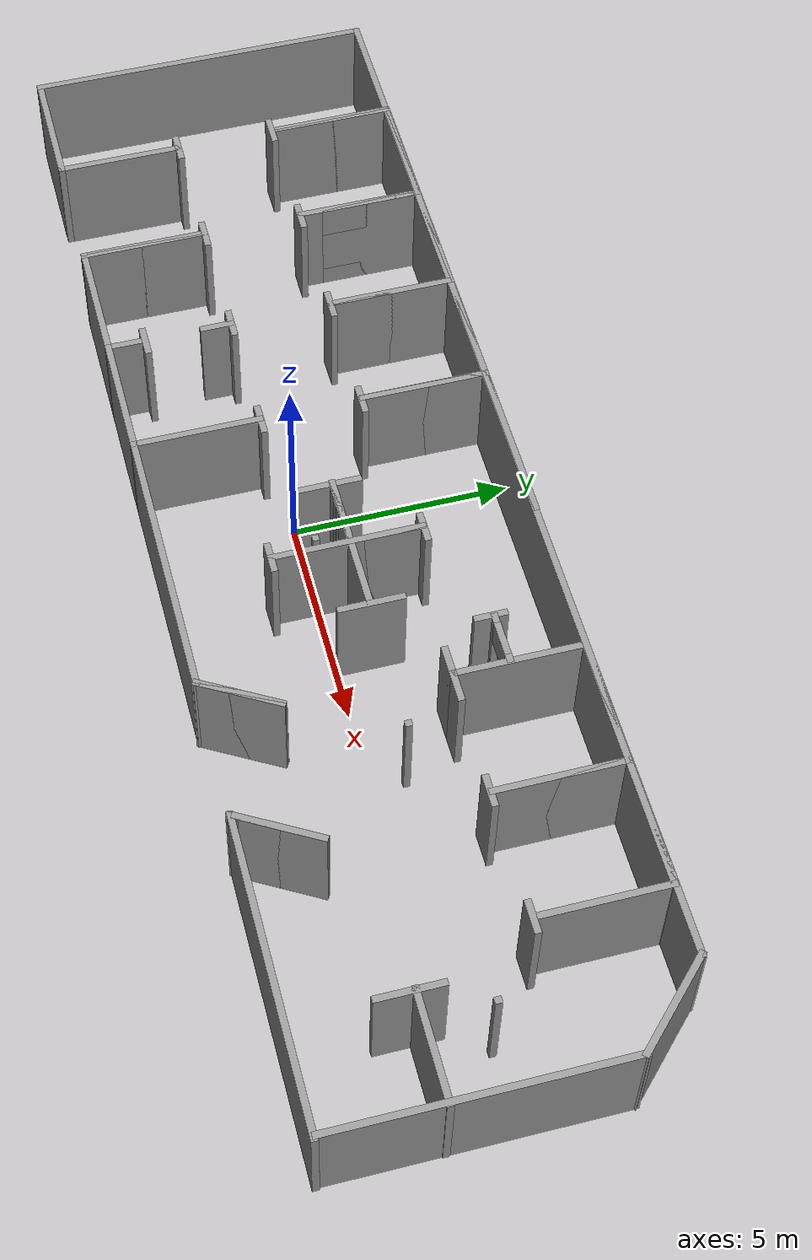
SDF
<?xml version='1.0'?>
<sdf version='1.7'>
  <model name='test_office_top'>
    <pose>1.03097 0.792199 0 0 -0 0</pose>
    <link name='Wall_101'>
      <collision name='Wall_101_Collision'>
        <geometry>
          <box>
            <size>0.76749 0.15 2.5</size>
          </box>
        </geometry>
        <pose>0 0 1.25 0 -0 0</pose>
      </collision>
      <visual name='Wall_101_Visual'>
        <pose>0 0 1.25 0 -0 0</pose>
        <geometry>
          <box>
            <size>0.76749 0.15 2.5</size>
          </box>
        </geometry>
        <material>
          <script>
            <uri>file://media/materials/scripts/gazebo.material</uri>
            <name>Gazebo/Grey</name>
          </script>
          <ambient>1 1 1 1</ambient>
        </material>
        <meta>
          <layer>0</layer>
        </meta>
      </visual>
      <pose>-2.48394 -1.15101 0 0 -0 0</pose>
    </link>
    <link name='Wall_103'>
      <collision name='Wall_103_Collision'>
        <geometry>
          <box>
            <size>0.75 0.15 2.5</size>
          </box>
        </geometry>
        <pose>0 0 1.25 0 -0 0</pose>
      </collision>
      <visual name='Wall_103_Visual'>
        <pose>0 0 1.25 0 -0 0</pose>
        <geometry>
          <box>
            <size>0.75 0.15 2.5</size>
          </box>
        </geometry>
        <material>
          <script>
            <uri>file://media/materials/scripts/gazebo.material</uri>
            <name>Gazebo/Grey</name>
          </script>
          <ambient>1 1 1 1</ambient>
        </material>
        <meta>
          <layer>0</layer>
        </meta>
      </visual>
      <pose>-2.4752 1.15727 0 0 -0 0</pose>
    </link>
    <link name='Wall_11'>
      <collision name='Wall_11_Collision'>
        <geometry>
          <box>
            <size>3 0.15 2.5</size>
          </box>
        </geometry>
        <pose>0 0 1.25 0 -0 0</pose>
      </collision>
      <visual name='Wall_11_Visual'>
        <pose>0 0 1.25 0 -0 0</pose>
        <geometry>
          <box>
            <size>3 0.15 2.5</size>
          </box>
        </geometry>
        <material>
          <script>
            <uri>file://media/materials/scripts/gazebo.material</uri>
            <name>Gazebo/Grey</name>
          </script>
          <ambient>1 1 1 1</ambient>
        </material>
        <meta>
          <layer>0</layer>
        </meta>
      </visual>
      <pose>-11.0535 2.61067 0 0 -0 -1.5708</pose>
    </link>
    <link name='Wall_118'>
      <collision name='Wall_118_Collision'>
        <geometry>
          <box>
            <size>0.15 0.15 2.5</size>
          </box>
        </geometry>
        <pose>0 0 1.25 0 -0 0</pose>
      </collision>
      <visual name='Wall_118_Visual'>
        <pose>0 0 1.25 0 -0 0</pose>
        <geometry>
          <box>
            <size>0.15 0.15 2.5</size>
          </box>
        </geometry>
        <material>
          <script>
            <uri>file://media/materials/scripts/gazebo.material</uri>
            <name>Gazebo/Grey</name>
          </script>
          <ambient>1 1 1 1</ambient>
        </material>
        <meta>
          <layer>0</layer>
        </meta>
      </visual>
      <pose>0.949167 -0.758548 0 0 -0 0</pose>
    </link>
    <link name='Wall_12'>
      <collision name='Wall_12_Collision'>
        <geometry>
          <box>
            <size>3 0.15 2.5</size>
          </box>
        </geometry>
        <pose>0 0 1.25 0 -0 0</pose>
      </collision>
      <visual name='Wall_12_Visual'>
        <pose>0 0 1.25 0 -0 0</pose>
        <geometry>
          <box>
            <size>3 0.15 2.5</size>
          </box>
        </geometry>
        <material>
          <script>
            <uri>file://media/materials/scripts/gazebo.material</uri>
            <name>Gazebo/Grey</name>
          </script>
          <ambient>1 1 1 1</ambient>
        </material>
        <meta>
          <layer>0</layer>
        </meta>
      </visual>
      <pose>-11.0535 2.61067 0 0 -0 1.5708</pose>
    </link>
    <link name='Wall_13'>
      <collision name='Wall_13_Collision'>
        <geometry>
          <box>
            <size>3 0.15 2.5</size>
          </box>
        </geometry>
        <pose>0 0 1.25 0 -0 0</pose>
      </collision>
      <visual name='Wall_13_Visual'>
        <pose>0 0 1.25 0 -0 0</pose>
        <geometry>
          <box>
            <size>3 0.15 2.5</size>
          </box>
        </geometry>
        <material>
          <script>
            <uri>file://media/materials/scripts/gazebo.material</uri>
            <name>Gazebo/Grey</name>
          </script>
          <ambient>1 1 1 1</ambient>
        </material>
        <meta>
          <layer>0</layer>
        </meta>
      </visual>
      <pose>-9.62852 4.03566 0 0 -0 0</pose>
    </link>
    <link name='Wall_130'>
      <collision name='Wall_130_Collision'>
        <geometry>
          <box>
            <size>0.15 0.15 2.5</size>
          </box>
        </geometry>
        <pose>0 0 1.25 0 -0 0</pose>
      </collision>
      <visual name='Wall_130_Visual'>
        <pose>0 0 1.25 0 -0 0</pose>
        <geometry>
          <box>
            <size>0.15 0.15 2.5</size>
          </box>
        </geometry>
        <material>
          <script>
            <uri>file://media/materials/scripts/gazebo.material</uri>
            <name>Gazebo/Grey</name>
          </script>
          <ambient>1 1 1 1</ambient>
        </material>
        <meta>
          <layer>0</layer>
        </meta>
      </visual>
      <pose>0.174804 -0.071124 0 0 -0 0</pose>
    </link>
    <link name='Wall_14'>
      <collision name='Wall_14_Collision'>
        <geometry>
          <box>
            <size>3 0.15 2.5</size>
          </box>
        </geometry>
        <pose>0 0 1.25 0 -0 0</pose>
      </collision>
      <visual name='Wall_14_Visual'>
        <pose>0 0 1.25 0 -0 0</pose>
        <geometry>
          <box>
            <size>3 0.15 2.5</size>
          </box>
        </geometry>
        <material>
          <script>
            <uri>file://media/materials/scripts/gazebo.material</uri>
            <name>Gazebo/Grey</name>
          </script>
          <ambient>1 1 1 1</ambient>
        </material>
        <meta>
          <layer>0</layer>
        </meta>
      </visual>
      <pose>-8.20352 2.61067 0 0 -0 -1.5708</pose>
    </link>
    <link name='Wall_148'>
      <collision name='Wall_148_Collision'>
        <geometry>
          <box>
            <size>0.15 0.15 2.5</size>
          </box>
        </geometry>
        <pose>0 0 1.25 0 -0 0</pose>
      </collision>
      <visual name='Wall_148_Visual'>
        <pose>0 0 1.25 0 -0 0</pose>
        <geometry>
          <box>
            <size>0.15 0.15 2.5</size>
          </box>
        </geometry>
        <material>
          <script>
            <uri>file://media/materials/scripts/gazebo.material</uri>
            <name>Gazebo/Grey</name>
          </script>
          <ambient>1 1 1 1</ambient>
        </material>
        <meta>
          <layer>0</layer>
        </meta>
      </visual>
      <pose>5.8748 -0.051011 0 0 -0 0</pose>
    </link>
    <link name='Wall_15'>
      <pose>-8.20352 2.61067 0 0 -0 1.5708</pose>
      <visual name='Wall_15_Visual_0'>
        <pose>-1.21259 0 1.25 0 -0 0</pose>
        <geometry>
          <box>
            <size>0.574817 0.15 2.5</size>
          </box>
        </geometry>
        <material>
          <script>
            <uri>file://media/materials/scripts/gazebo.material</uri>
            <name>Gazebo/Grey</name>
          </script>
          <ambient>1 1 1 1</ambient>
        </material>
        <meta>
          <layer>0</layer>
        </meta>
      </visual>
      <collision name='Wall_15_Collision_0'>
        <geometry>
          <box>
            <size>0.574817 0.15 2.5</size>
          </box>
        </geometry>
        <pose>-1.21259 0 1.25 0 -0 0</pose>
      </collision>
      <visual name='Wall_15_Visual_1'>
        <pose>0.287408 0 0.25 0 -0 0</pose>
        <geometry>
          <box>
            <size>2.42518 0.15 0.5</size>
          </box>
        </geometry>
        <material>
          <script>
            <uri>file://media/materials/scripts/gazebo.material</uri>
            <name>Gazebo/Grey</name>
          </script>
          <ambient>1 1 1 1</ambient>
        </material>
        <meta>
          <layer>0</layer>
        </meta>
      </visual>
      <collision name='Wall_15_Collision_1'>
        <geometry>
          <box>
            <size>2.42518 0.15 0.5</size>
          </box>
        </geometry>
        <pose>0.287408 0 0.25 0 -0 0</pose>
      </collision>
      <visual name='Wall_15_Visual_2'>
        <pose>1.18741 0 1.5 0 -0 0</pose>
        <geometry>
          <box>
            <size>0.625183 0.15 2</size>
          </box>
        </geometry>
        <material>
          <script>
            <uri>file://media/materials/scripts/gazebo.material</uri>
            <name>Gazebo/Grey</name>
          </script>
          <ambient>1 1 1 1</ambient>
        </material>
        <meta>
          <layer>0</layer>
        </meta>
      </visual>
      <collision name='Wall_15_Collision_2'>
        <geometry>
          <box>
            <size>0.625183 0.15 2</size>
          </box>
        </geometry>
        <pose>1.18741 0 1.5 0 -0 0</pose>
      </collision>
      <visual name='Wall_15_Visual_3'>
        <pose>-0.025183 0 2.1 0 -0 0</pose>
        <geometry>
          <box>
            <size>1.8 0.15 0.8</size>
          </box>
        </geometry>
        <material>
          <script>
            <uri>file://media/materials/scripts/gazebo.material</uri>
            <name>Gazebo/Grey</name>
          </script>
          <ambient>1 1 1 1</ambient>
        </material>
        <meta>
          <layer>0</layer>
        </meta>
      </visual>
      <collision name='Wall_15_Collision_3'>
        <geometry>
          <box>
            <size>1.8 0.15 0.8</size>
          </box>
        </geometry>
        <pose>-0.025183 0 2.1 0 -0 0</pose>
      </collision>
    </link>
    <link name='Wall_16'>
      <collision name='Wall_16_Collision'>
        <geometry>
          <box>
            <size>3 0.15 2.5</size>
          </box>
        </geometry>
        <pose>0 0 1.25 0 -0 0</pose>
      </collision>
      <visual name='Wall_16_Visual'>
        <pose>0 0 1.25 0 -0 0</pose>
        <geometry>
          <box>
            <size>3 0.15 2.5</size>
          </box>
        </geometry>
        <material>
          <script>
            <uri>file://media/materials/scripts/gazebo.material</uri>
            <name>Gazebo/Grey</name>
          </script>
          <ambient>1 1 1 1</ambient>
        </material>
        <meta>
          <layer>0</layer>
        </meta>
      </visual>
      <pose>-6.77852 4.03566 0 0 -0 0</pose>
    </link>
    <link name='Wall_164'>
      <collision name='Wall_164_Collision'>
        <geometry>
          <box>
            <size>6.5 0.15 2.5</size>
          </box>
        </geometry>
        <pose>0 0 1.25 0 -0 0</pose>
      </collision>
      <visual name='Wall_164_Visual'>
        <pose>0 0 1.25 0 -0 0</pose>
        <geometry>
          <box>
            <size>6.5 0.15 2.5</size>
          </box>
        </geometry>
        <material>
          <script>
            <uri>file://media/materials/scripts/gazebo.material</uri>
            <name>Gazebo/Grey</name>
          </script>
          <ambient>1 1 1 1</ambient>
        </material>
        <meta>
          <layer>0</layer>
        </meta>
      </visual>
      <pose>0.681479 -4.01433 0 0 -0 0</pose>
    </link>
    <link name='Wall_17'>
      <collision name='Wall_17_Collision'>
        <geometry>
          <box>
            <size>3 0.15 2.5</size>
          </box>
        </geometry>
        <pose>0 0 1.25 0 -0 0</pose>
      </collision>
      <visual name='Wall_17_Visual'>
        <pose>0 0 1.25 0 -0 0</pose>
        <geometry>
          <box>
            <size>3 0.15 2.5</size>
          </box>
        </geometry>
        <material>
          <script>
            <uri>file://media/materials/scripts/gazebo.material</uri>
            <name>Gazebo/Grey</name>
          </script>
          <ambient>1 1 1 1</ambient>
        </material>
        <meta>
          <layer>0</layer>
        </meta>
      </visual>
      <pose>-5.35352 2.61067 0 0 -0 -1.5708</pose>
    </link>
    <link name='Wall_170'>
      <collision name='Wall_170_Collision'>
        <geometry>
          <box>
            <size>3 0.15 2.5</size>
          </box>
        </geometry>
        <pose>0 0 1.25 0 -0 0</pose>
      </collision>
      <visual name='Wall_170_Visual'>
        <pose>0 0 1.25 0 -0 0</pose>
        <geometry>
          <box>
            <size>3 0.15 2.5</size>
          </box>
        </geometry>
        <material>
          <script>
            <uri>file://media/materials/scripts/gazebo.material</uri>
            <name>Gazebo/Grey</name>
          </script>
          <ambient>1 1 1 1</ambient>
        </material>
        <meta>
          <layer>0</layer>
        </meta>
      </visual>
      <pose>-3.91852 -4.01433 0 0 -0 0</pose>
    </link>
    <link name='Wall_172'>
      <collision name='Wall_172_Collision'>
        <geometry>
          <box>
            <size>2 0.15 2.5</size>
          </box>
        </geometry>
        <pose>0 0 1.25 0 -0 0</pose>
      </collision>
      <visual name='Wall_172_Visual'>
        <pose>0 0 1.25 0 -0 0</pose>
        <geometry>
          <box>
            <size>2 0.15 2.5</size>
          </box>
        </geometry>
        <material>
          <script>
            <uri>file://media/materials/scripts/gazebo.material</uri>
            <name>Gazebo/Grey</name>
          </script>
          <ambient>1 1 1 1</ambient>
        </material>
        <meta>
          <layer>0</layer>
        </meta>
      </visual>
      <pose>4.31898 -3.21326 0 0 -0 1.0472</pose>
    </link>
    <link name='Wall_173'>
      <collision name='Wall_173_Collision'>
        <geometry>
          <box>
            <size>2 0.15 2.5</size>
          </box>
        </geometry>
        <pose>0 0 1.25 0 -0 0</pose>
      </collision>
      <visual name='Wall_173_Visual'>
        <pose>0 0 1.25 0 -0 0</pose>
        <geometry>
          <box>
            <size>2 0.15 2.5</size>
          </box>
        </geometry>
        <material>
          <script>
            <uri>file://media/materials/scripts/gazebo.material</uri>
            <name>Gazebo/Grey</name>
          </script>
          <ambient>1 1 1 1</ambient>
        </material>
        <meta>
          <layer>0</layer>
        </meta>
      </visual>
      <pose>4.31898 -3.21326 0 0 -0 -2.0944</pose>
    </link>
    <link name='Wall_18'>
      <collision name='Wall_18_Collision'>
        <geometry>
          <box>
            <size>3 0.15 2.5</size>
          </box>
        </geometry>
        <pose>0 0 1.25 0 -0 0</pose>
      </collision>
      <visual name='Wall_18_Visual'>
        <pose>0 0 1.25 0 -0 0</pose>
        <geometry>
          <box>
            <size>3 0.15 2.5</size>
          </box>
        </geometry>
        <material>
          <script>
            <uri>file://media/materials/scripts/gazebo.material</uri>
            <name>Gazebo/Grey</name>
          </script>
          <ambient>1 1 1 1</ambient>
        </material>
        <meta>
          <layer>0</layer>
        </meta>
      </visual>
      <pose>-5.35352 2.61067 0 0 -0 1.5708</pose>
    </link>
    <link name='Wall_19'>
      <collision name='Wall_19_Collision'>
        <geometry>
          <box>
            <size>3 0.15 2.5</size>
          </box>
        </geometry>
        <pose>0 0 1.25 0 -0 0</pose>
      </collision>
      <visual name='Wall_19_Visual'>
        <pose>0 0 1.25 0 -0 0</pose>
        <geometry>
          <box>
            <size>3 0.15 2.5</size>
          </box>
        </geometry>
        <material>
          <script>
            <uri>file://media/materials/scripts/gazebo.material</uri>
            <name>Gazebo/Grey</name>
          </script>
          <ambient>1 1 1 1</ambient>
        </material>
        <meta>
          <layer>0</layer>
        </meta>
      </visual>
      <pose>-3.92852 4.03566 0 0 -0 0</pose>
    </link>
    <link name='Wall_196'>
      <collision name='Wall_196_Collision'>
        <geometry>
          <box>
            <size>2 0.15 2.5</size>
          </box>
        </geometry>
        <pose>0 0 1.25 0 -0 0</pose>
      </collision>
      <visual name='Wall_196_Visual'>
        <pose>0 0 1.25 0 -0 0</pose>
        <geometry>
          <box>
            <size>2 0.15 2.5</size>
          </box>
        </geometry>
        <material>
          <script>
            <uri>file://media/materials/scripts/gazebo.material</uri>
            <name>Gazebo/Grey</name>
          </script>
          <ambient>1 1 1 1</ambient>
        </material>
        <meta>
          <layer>0</layer>
        </meta>
      </visual>
      <pose>7.53536 -3.13578 0 0 -0 1.0472</pose>
    </link>
    <link name='Wall_197'>
      <collision name='Wall_197_Collision'>
        <geometry>
          <box>
            <size>2 0.15 2.5</size>
          </box>
        </geometry>
        <pose>0 0 1.25 0 -0 0</pose>
      </collision>
      <visual name='Wall_197_Visual'>
        <pose>0 0 1.25 0 -0 0</pose>
        <geometry>
          <box>
            <size>2 0.15 2.5</size>
          </box>
        </geometry>
        <material>
          <script>
            <uri>file://media/materials/scripts/gazebo.material</uri>
            <name>Gazebo/Grey</name>
          </script>
          <ambient>1 1 1 1</ambient>
        </material>
        <meta>
          <layer>0</layer>
        </meta>
      </visual>
      <pose>7.53536 -3.13578 0 0 -0 -2.0944</pose>
    </link>
    <link name='Wall_198'>
      <collision name='Wall_198_Collision'>
        <geometry>
          <box>
            <size>0.25 0.15 2.5</size>
          </box>
        </geometry>
        <pose>0 0 1.25 0 -0 0</pose>
      </collision>
      <visual name='Wall_198_Visual'>
        <pose>0 0 1.25 0 -0 0</pose>
        <geometry>
          <box>
            <size>0.25 0.15 2.5</size>
          </box>
        </geometry>
        <material>
          <script>
            <uri>file://media/materials/scripts/gazebo.material</uri>
            <name>Gazebo/Grey</name>
          </script>
          <ambient>1 1 1 1</ambient>
        </material>
        <meta>
          <layer>0</layer>
        </meta>
      </visual>
      <pose>7.04786 -3.98016 0 0 -0 -2.0944</pose>
    </link>
    <link name='Wall_199'>
      <collision name='Wall_199_Collision'>
        <geometry>
          <box>
            <size>7.03061 0.15 2.5</size>
          </box>
        </geometry>
        <pose>0 0 1.25 0 -0 0</pose>
      </collision>
      <visual name='Wall_199_Visual'>
        <pose>0 0 1.25 0 -0 0</pose>
        <geometry>
          <box>
            <size>7.03061 0.15 2.5</size>
          </box>
        </geometry>
        <material>
          <script>
            <uri>file://media/materials/scripts/gazebo.material</uri>
            <name>Gazebo/Grey</name>
          </script>
          <ambient>1 1 1 1</ambient>
        </material>
        <meta>
          <layer>0</layer>
        </meta>
      </visual>
      <pose>10.4632 -4.03111 0 0 -0 -0.002223</pose>
    </link>
    <link name='Wall_20'>
      <collision name='Wall_20_Collision'>
        <geometry>
          <box>
            <size>3 0.15 2.5</size>
          </box>
        </geometry>
        <pose>0 0 1.25 0 -0 0</pose>
      </collision>
      <visual name='Wall_20_Visual'>
        <pose>0 0 1.25 0 -0 0</pose>
        <geometry>
          <box>
            <size>3 0.15 2.5</size>
          </box>
        </geometry>
        <material>
          <script>
            <uri>file://media/materials/scripts/gazebo.material</uri>
            <name>Gazebo/Grey</name>
          </script>
          <ambient>1 1 1 1</ambient>
        </material>
        <meta>
          <layer>0</layer>
        </meta>
      </visual>
      <pose>-2.50352 2.61067 0 0 -0 -1.5708</pose>
    </link>
    <link name='Wall_21'>
      <collision name='Wall_21_Collision'>
        <geometry>
          <box>
            <size>3 0.15 2.5</size>
          </box>
        </geometry>
        <pose>0 0 1.25 0 -0 0</pose>
      </collision>
      <visual name='Wall_21_Visual'>
        <pose>0 0 1.25 0 -0 0</pose>
        <geometry>
          <box>
            <size>3 0.15 2.5</size>
          </box>
        </geometry>
        <material>
          <script>
            <uri>file://media/materials/scripts/gazebo.material</uri>
            <name>Gazebo/Grey</name>
          </script>
          <ambient>1 1 1 1</ambient>
        </material>
        <meta>
          <layer>0</layer>
        </meta>
      </visual>
      <pose>-2.50352 2.61067 0 0 -0 1.5708</pose>
    </link>
    <link name='Wall_223'>
      <collision name='Wall_223_Collision'>
        <geometry>
          <box>
            <size>4 0.15 2.5</size>
          </box>
        </geometry>
        <pose>0 0 1.25 0 -0 0</pose>
      </collision>
      <visual name='Wall_223_Visual'>
        <pose>0 0 1.25 0 -0 0</pose>
        <geometry>
          <box>
            <size>4 0.15 2.5</size>
          </box>
        </geometry>
        <material>
          <script>
            <uri>file://media/materials/scripts/gazebo.material</uri>
            <name>Gazebo/Grey</name>
          </script>
          <ambient>1 1 1 1</ambient>
        </material>
        <meta>
          <layer>0</layer>
        </meta>
      </visual>
      <pose>-0.578521 4.03566 0 0 -0 0</pose>
    </link>
    <link name='Wall_24'>
      <collision name='Wall_24_Collision'>
        <geometry>
          <box>
            <size>0.16 0.15 2.5</size>
          </box>
        </geometry>
        <pose>0 0 1.25 0 -0 0</pose>
      </collision>
      <visual name='Wall_24_Visual'>
        <pose>0 0 1.25 0 -0 0</pose>
        <geometry>
          <box>
            <size>0.16 0.15 2.5</size>
          </box>
        </geometry>
        <material>
          <script>
            <uri>file://media/materials/scripts/gazebo.material</uri>
            <name>Gazebo/Grey</name>
          </script>
          <ambient>1 1 1 1</ambient>
        </material>
        <meta>
          <layer>0</layer>
        </meta>
      </visual>
      <pose>-11.0485 -1.16433 0 0 -0 0</pose>
    </link>
    <link name='Wall_25'>
      <collision name='Wall_25_Collision'>
        <geometry>
          <box>
            <size>3 0.15 2.5</size>
          </box>
        </geometry>
        <pose>0 0 1.25 0 -0 0</pose>
      </collision>
      <visual name='Wall_25_Visual'>
        <pose>0 0 1.25 0 -0 0</pose>
        <geometry>
          <box>
            <size>3 0.15 2.5</size>
          </box>
        </geometry>
        <material>
          <script>
            <uri>file://media/materials/scripts/gazebo.material</uri>
            <name>Gazebo/Grey</name>
          </script>
          <ambient>1 1 1 1</ambient>
        </material>
        <meta>
          <layer>0</layer>
        </meta>
      </visual>
      <pose>-11.0435 -2.58934 0 0 -0 -1.5708</pose>
    </link>
    <link name='Wall_26'>
      <collision name='Wall_26_Collision'>
        <geometry>
          <box>
            <size>3 0.15 2.5</size>
          </box>
        </geometry>
        <pose>0 0 1.25 0 -0 0</pose>
      </collision>
      <visual name='Wall_26_Visual'>
        <pose>0 0 1.25 0 -0 0</pose>
        <geometry>
          <box>
            <size>3 0.15 2.5</size>
          </box>
        </geometry>
        <material>
          <script>
            <uri>file://media/materials/scripts/gazebo.material</uri>
            <name>Gazebo/Grey</name>
          </script>
          <ambient>1 1 1 1</ambient>
        </material>
        <meta>
          <layer>0</layer>
        </meta>
      </visual>
      <pose>-12.4685 -4.01433 0 0 -0 3.14159</pose>
    </link>
    <link name='Wall_276'>
      <collision name='Wall_276_Collision'>
        <geometry>
          <box>
            <size>0.15 0.15 2.5</size>
          </box>
        </geometry>
        <pose>0 0 1.25 0 -0 0</pose>
      </collision>
      <visual name='Wall_276_Visual'>
        <pose>0 0 1.25 0 -0 0</pose>
        <geometry>
          <box>
            <size>0.15 0.15 2.5</size>
          </box>
        </geometry>
        <material>
          <script>
            <uri>file://media/materials/scripts/gazebo.material</uri>
            <name>Gazebo/Grey</name>
          </script>
          <ambient>0 0 0 1</ambient>
        </material>
        <meta>
          <layer>0</layer>
        </meta>
      </visual>
      <pose>12.1443 -0.017647 0 0 -0 0</pose>
    </link>
    <link name='Wall_29'>
      <collision name='Wall_29_Collision'>
        <geometry>
          <box>
            <size>3 0.15 2.5</size>
          </box>
        </geometry>
        <pose>0 0 1.25 0 -0 0</pose>
      </collision>
      <visual name='Wall_29_Visual'>
        <pose>0 0 1.25 0 -0 0</pose>
        <geometry>
          <box>
            <size>3 0.15 2.5</size>
          </box>
        </geometry>
        <material>
          <script>
            <uri>file://media/materials/scripts/gazebo.material</uri>
            <name>Gazebo/Grey</name>
          </script>
          <ambient>1 1 1 1</ambient>
        </material>
        <meta>
          <layer>0</layer>
        </meta>
      </visual>
      <pose>-8.19352 -2.58934 0 0 -0 1.5708</pose>
    </link>
    <link name='Wall_30'>
      <collision name='Wall_30_Collision'>
        <geometry>
          <box>
            <size>3 0.15 2.5</size>
          </box>
        </geometry>
        <pose>0 0 1.25 0 -0 0</pose>
      </collision>
      <visual name='Wall_30_Visual'>
        <pose>0 0 1.25 0 -0 0</pose>
        <geometry>
          <box>
            <size>3 0.15 2.5</size>
          </box>
        </geometry>
        <material>
          <script>
            <uri>file://media/materials/scripts/gazebo.material</uri>
            <name>Gazebo/Grey</name>
          </script>
          <ambient>1 1 1 1</ambient>
        </material>
        <meta>
          <layer>0</layer>
        </meta>
      </visual>
      <pose>-8.19352 -2.58934 0 0 -0 -1.5708</pose>
    </link>
    <link name='Wall_31'>
      <collision name='Wall_31_Collision'>
        <geometry>
          <box>
            <size>3 0.15 2.5</size>
          </box>
        </geometry>
        <pose>0 0 1.25 0 -0 0</pose>
      </collision>
      <visual name='Wall_31_Visual'>
        <pose>0 0 1.25 0 -0 0</pose>
        <geometry>
          <box>
            <size>3 0.15 2.5</size>
          </box>
        </geometry>
        <material>
          <script>
            <uri>file://media/materials/scripts/gazebo.material</uri>
            <name>Gazebo/Grey</name>
          </script>
          <ambient>1 1 1 1</ambient>
        </material>
        <meta>
          <layer>0</layer>
        </meta>
      </visual>
      <pose>-6.76852 -4.01433 0 0 -0 0</pose>
    </link>
    <link name='Wall_311'>
      <collision name='Wall_311_Collision'>
        <geometry>
          <box>
            <size>1.75 0.15 2.5</size>
          </box>
        </geometry>
        <pose>0 0 1.25 0 -0 0</pose>
      </collision>
      <visual name='Wall_311_Visual'>
        <pose>0 0 1.25 0 -0 0</pose>
        <geometry>
          <box>
            <size>1.75 0.15 2.5</size>
          </box>
        </geometry>
        <material>
          <script>
            <uri>file://media/materials/scripts/gazebo.material</uri>
            <name>Gazebo/Grey</name>
          </script>
          <ambient>1 1 1 1</ambient>
        </material>
        <meta>
          <layer>0</layer>
        </meta>
      </visual>
      <pose>1.20731 0.748989 0 0 -0 1.5708</pose>
    </link>
    <link name='Wall_312'>
      <collision name='Wall_312_Collision'>
        <geometry>
          <box>
            <size>3.5 0.15 2.5</size>
          </box>
        </geometry>
        <pose>0 0 1.25 0 -0 0</pose>
      </collision>
      <visual name='Wall_312_Visual'>
        <pose>0 0 1.25 0 -0 0</pose>
        <geometry>
          <box>
            <size>3.5 0.15 2.5</size>
          </box>
        </geometry>
        <material>
          <script>
            <uri>file://media/materials/scripts/gazebo.material</uri>
            <name>Gazebo/Grey</name>
          </script>
          <ambient>1 1 1 1</ambient>
        </material>
        <meta>
          <layer>0</layer>
        </meta>
      </visual>
      <pose>1.20731 -0.126011 0 0 -0 -1.5708</pose>
    </link>
    <link name='Wall_314'>
      <collision name='Wall_314_Collision'>
        <geometry>
          <box>
            <size>1.75 0.15 2.5</size>
          </box>
        </geometry>
        <pose>0 0 1.25 0 -0 0</pose>
      </collision>
      <visual name='Wall_314_Visual'>
        <pose>0 0 1.25 0 -0 0</pose>
        <geometry>
          <box>
            <size>1.75 0.15 2.5</size>
          </box>
        </geometry>
        <material>
          <script>
            <uri>file://media/materials/scripts/gazebo.material</uri>
            <name>Gazebo/Grey</name>
          </script>
          <ambient>1 1 1 1</ambient>
        </material>
        <meta>
          <layer>0</layer>
        </meta>
      </visual>
      <pose>1.20731 0.748989 0 0 -0 -1.5708</pose>
    </link>
    <link name='Wall_315'>
      <collision name='Wall_315_Collision'>
        <geometry>
          <box>
            <size>1.75 0.15 2.5</size>
          </box>
        </geometry>
        <pose>0 0 1.25 0 -0 0</pose>
      </collision>
      <visual name='Wall_315_Visual'>
        <pose>0 0 1.25 0 -0 0</pose>
        <geometry>
          <box>
            <size>1.75 0.15 2.5</size>
          </box>
        </geometry>
        <material>
          <script>
            <uri>file://media/materials/scripts/gazebo.material</uri>
            <name>Gazebo/Grey</name>
          </script>
          <ambient>1 1 1 1</ambient>
        </material>
        <meta>
          <layer>0</layer>
        </meta>
      </visual>
      <pose>0.407314 -0.051011 0 0 -0 3.14159</pose>
    </link>
    <link name='Wall_316'>
      <collision name='Wall_316_Collision'>
        <geometry>
          <box>
            <size>1.75 0.15 2.5</size>
          </box>
        </geometry>
        <pose>0 0 1.25 0 -0 0</pose>
      </collision>
      <visual name='Wall_316_Visual'>
        <pose>0 0 1.25 0 -0 0</pose>
        <geometry>
          <box>
            <size>1.75 0.15 2.5</size>
          </box>
        </geometry>
        <material>
          <script>
            <uri>file://media/materials/scripts/gazebo.material</uri>
            <name>Gazebo/Grey</name>
          </script>
          <ambient>1 1 1 1</ambient>
        </material>
        <meta>
          <layer>0</layer>
        </meta>
      </visual>
      <pose>0.407314 -0.051011 0 0 -0 0</pose>
    </link>
    <link name='Wall_317'>
      <collision name='Wall_317_Collision'>
        <geometry>
          <box>
            <size>1.75 0.15 2.5</size>
          </box>
        </geometry>
        <pose>0 0 1.25 0 -0 0</pose>
      </collision>
      <visual name='Wall_317_Visual'>
        <pose>0 0 1.25 0 -0 0</pose>
        <geometry>
          <box>
            <size>1.75 0.15 2.5</size>
          </box>
        </geometry>
        <material>
          <script>
            <uri>file://media/materials/scripts/gazebo.material</uri>
            <name>Gazebo/Grey</name>
          </script>
          <ambient>1 1 1 1</ambient>
        </material>
        <meta>
          <layer>0</layer>
        </meta>
      </visual>
      <pose>2.00731 -0.051011 0 0 -0 0</pose>
    </link>
    <link name='Wall_320'>
      <collision name='Wall_320_Collision'>
        <geometry>
          <box>
            <size>1.5 0.15 2.5</size>
          </box>
        </geometry>
        <pose>0 0 1.25 0 -0 0</pose>
      </collision>
      <visual name='Wall_320_Visual'>
        <pose>0 0 1.25 0 -0 0</pose>
        <geometry>
          <box>
            <size>1.5 0.15 2.5</size>
          </box>
        </geometry>
        <material>
          <script>
            <uri>file://media/materials/scripts/gazebo.material</uri>
            <name>Gazebo/Grey</name>
          </script>
          <ambient>1 1 1 1</ambient>
        </material>
        <meta>
          <layer>0</layer>
        </meta>
      </visual>
      <pose>-0.35967 -0.14194 0 0 -0 -1.5708</pose>
    </link>
    <link name='Wall_322'>
      <collision name='Wall_322_Collision'>
        <geometry>
          <box>
            <size>1.5 0.15 2.5</size>
          </box>
        </geometry>
        <pose>0 0 1.25 0 -0 0</pose>
      </collision>
      <visual name='Wall_322_Visual'>
        <pose>0 0 1.25 0 -0 0</pose>
        <geometry>
          <box>
            <size>1.5 0.15 2.5</size>
          </box>
        </geometry>
        <material>
          <script>
            <uri>file://media/materials/scripts/gazebo.material</uri>
            <name>Gazebo/Grey</name>
          </script>
          <ambient>1 1 1 1</ambient>
        </material>
        <meta>
          <layer>0</layer>
        </meta>
      </visual>
      <pose>2.85434 -0.023342 0 0 -0 -1.5708</pose>
    </link>
    <link name='Wall_324'>
      <collision name='Wall_324_Collision'>
        <geometry>
          <box>
            <size>0.75 0.15 2.5</size>
          </box>
        </geometry>
        <pose>0 0 1.25 0 -0 0</pose>
      </collision>
      <visual name='Wall_324_Visual'>
        <pose>0 0 1.25 0 -0 0</pose>
        <geometry>
          <box>
            <size>0.75 0.15 2.5</size>
          </box>
        </geometry>
        <material>
          <script>
            <uri>file://media/materials/scripts/gazebo.material</uri>
            <name>Gazebo/Grey</name>
          </script>
          <ambient>1 1 1 1</ambient>
        </material>
        <meta>
          <layer>0</layer>
        </meta>
      </visual>
      <pose>1.23305 1.56486 0 0 -0 0</pose>
    </link>
    <link name='Wall_326'>
      <collision name='Wall_326_Collision'>
        <geometry>
          <box>
            <size>0.75 0.15 2.5</size>
          </box>
        </geometry>
        <pose>0 0 1.25 0 -0 0</pose>
      </collision>
      <visual name='Wall_326_Visual'>
        <pose>0 0 1.25 0 -0 0</pose>
        <geometry>
          <box>
            <size>0.75 0.15 2.5</size>
          </box>
        </geometry>
        <material>
          <script>
            <uri>file://media/materials/scripts/gazebo.material</uri>
            <name>Gazebo/Grey</name>
          </script>
          <ambient>1 1 1 1</ambient>
        </material>
        <meta>
          <layer>0</layer>
        </meta>
      </visual>
      <pose>1.19747 -1.80332 0 0 -0 0</pose>
    </link>
    <link name='Wall_331'>
      <collision name='Wall_331_Collision'>
        <geometry>
          <box>
            <size>3 0.15 2.5</size>
          </box>
        </geometry>
        <pose>0 0 1.25 0 -0 0</pose>
      </collision>
      <visual name='Wall_331_Visual'>
        <pose>0 0 1.25 0 -0 0</pose>
        <geometry>
          <box>
            <size>3 0.15 2.5</size>
          </box>
        </geometry>
        <material>
          <script>
            <uri>file://media/materials/scripts/gazebo.material</uri>
            <name>Gazebo/Grey</name>
          </script>
          <ambient>1 1 1 1</ambient>
        </material>
        <meta>
          <layer>0</layer>
        </meta>
      </visual>
      <pose>6.37934 4.00166 0 0 -0 0</pose>
    </link>
    <link name='Wall_332'>
      <collision name='Wall_332_Collision'>
        <geometry>
          <box>
            <size>3 0.15 2.5</size>
          </box>
        </geometry>
        <pose>0 0 1.25 0 -0 0</pose>
      </collision>
      <visual name='Wall_332_Visual'>
        <pose>0 0 1.25 0 -0 0</pose>
        <geometry>
          <box>
            <size>3 0.15 2.5</size>
          </box>
        </geometry>
        <material>
          <script>
            <uri>file://media/materials/scripts/gazebo.material</uri>
            <name>Gazebo/Grey</name>
          </script>
          <ambient>1 1 1 1</ambient>
        </material>
        <meta>
          <layer>0</layer>
        </meta>
      </visual>
      <pose>7.80434 2.57666 0 0 -0 -1.5708</pose>
    </link>
    <link name='Wall_333'>
      <collision name='Wall_333_Collision'>
        <geometry>
          <box>
            <size>3 0.15 2.5</size>
          </box>
        </geometry>
        <pose>0 0 1.25 0 -0 0</pose>
      </collision>
      <visual name='Wall_333_Visual'>
        <pose>0 0 1.25 0 -0 0</pose>
        <geometry>
          <box>
            <size>3 0.15 2.5</size>
          </box>
        </geometry>
        <material>
          <script>
            <uri>file://media/materials/scripts/gazebo.material</uri>
            <name>Gazebo/Grey</name>
          </script>
          <ambient>1 1 1 1</ambient>
        </material>
        <meta>
          <layer>0</layer>
        </meta>
      </visual>
      <pose>7.80434 2.57666 0 0 -0 1.5708</pose>
    </link>
    <link name='Wall_334'>
      <collision name='Wall_334_Collision'>
        <geometry>
          <box>
            <size>3 0.15 2.5</size>
          </box>
        </geometry>
        <pose>0 0 1.25 0 -0 0</pose>
      </collision>
      <visual name='Wall_334_Visual'>
        <pose>0 0 1.25 0 -0 0</pose>
        <geometry>
          <box>
            <size>3 0.15 2.5</size>
          </box>
        </geometry>
        <material>
          <script>
            <uri>file://media/materials/scripts/gazebo.material</uri>
            <name>Gazebo/Grey</name>
          </script>
          <ambient>1 1 1 1</ambient>
        </material>
        <meta>
          <layer>0</layer>
        </meta>
      </visual>
      <pose>9.22934 4.00166 0 0 -0 0</pose>
    </link>
    <link name='Wall_335'>
      <collision name='Wall_335_Collision'>
        <geometry>
          <box>
            <size>3 0.15 2.5</size>
          </box>
        </geometry>
        <pose>0 0 1.25 0 -0 0</pose>
      </collision>
      <visual name='Wall_335_Visual'>
        <pose>0 0 1.25 0 -0 0</pose>
        <geometry>
          <box>
            <size>3 0.15 2.5</size>
          </box>
        </geometry>
        <material>
          <script>
            <uri>file://media/materials/scripts/gazebo.material</uri>
            <name>Gazebo/Grey</name>
          </script>
          <ambient>1 1 1 1</ambient>
        </material>
        <meta>
          <layer>0</layer>
        </meta>
      </visual>
      <pose>10.6543 2.57666 0 0 -0 -1.5708</pose>
    </link>
    <link name='Wall_337'>
      <collision name='Wall_337_Collision'>
        <geometry>
          <box>
            <size>0.75 0.15 2.5</size>
          </box>
        </geometry>
        <pose>0 0 1.25 0 -0 0</pose>
      </collision>
      <visual name='Wall_337_Visual'>
        <pose>0 0 1.25 0 -0 0</pose>
        <geometry>
          <box>
            <size>0.75 0.15 2.5</size>
          </box>
        </geometry>
        <material>
          <script>
            <uri>file://media/materials/scripts/gazebo.material</uri>
            <name>Gazebo/Grey</name>
          </script>
          <ambient>1 1 1 1</ambient>
        </material>
        <meta>
          <layer>0</layer>
        </meta>
      </visual>
      <pose>7.77966 1.11419 0 0 -0 0</pose>
    </link>
    <link name='Wall_343'>
      <collision name='Wall_343_Collision'>
        <geometry>
          <box>
            <size>0.75 0.15 2.5</size>
          </box>
        </geometry>
        <pose>0 0 1.25 0 -0 0</pose>
      </collision>
      <visual name='Wall_343_Visual'>
        <pose>0 0 1.25 0 -0 0</pose>
        <geometry>
          <box>
            <size>0.75 0.15 2.5</size>
          </box>
        </geometry>
        <material>
          <script>
            <uri>file://media/materials/scripts/gazebo.material</uri>
            <name>Gazebo/Grey</name>
          </script>
          <ambient>1 1 1 1</ambient>
        </material>
        <meta>
          <layer>0</layer>
        </meta>
      </visual>
      <pose>10.6379 1.12605 0 0 -0 0</pose>
    </link>
    <link name='Wall_35'>
      <collision name='Wall_35_Collision'>
        <geometry>
          <box>
            <size>3 0.15 2.5</size>
          </box>
        </geometry>
        <pose>0 0 1.25 0 -0 0</pose>
      </collision>
      <visual name='Wall_35_Visual'>
        <pose>0 0 1.25 0 -0 0</pose>
        <geometry>
          <box>
            <size>3 0.15 2.5</size>
          </box>
        </geometry>
        <material>
          <script>
            <uri>file://media/materials/scripts/gazebo.material</uri>
            <name>Gazebo/Grey</name>
          </script>
          <ambient>1 1 1 1</ambient>
        </material>
        <meta>
          <layer>0</layer>
        </meta>
      </visual>
      <pose>-2.49352 -2.58934 0 0 -0 1.5708</pose>
    </link>
    <link name='Wall_358'>
      <collision name='Wall_358_Collision'>
        <geometry>
          <box>
            <size>2.5 0.15 2.5</size>
          </box>
        </geometry>
        <pose>0 0 1.25 0 -0 0</pose>
      </collision>
      <visual name='Wall_358_Visual'>
        <pose>0 0 1.25 0 -0 0</pose>
        <geometry>
          <box>
            <size>2.5 0.15 2.5</size>
          </box>
        </geometry>
        <material>
          <script>
            <uri>file://media/materials/scripts/gazebo.material</uri>
            <name>Gazebo/Grey</name>
          </script>
          <ambient>1 1 1 1</ambient>
        </material>
        <meta>
          <layer>0</layer>
        </meta>
      </visual>
      <pose>12.709 -1.45939 0 0 -0 3.14159</pose>
    </link>
    <link name='Wall_360'>
      <collision name='Wall_360_Collision'>
        <geometry>
          <box>
            <size>1.5 0.15 2.5</size>
          </box>
        </geometry>
        <pose>0 0 1.25 0 -0 0</pose>
      </collision>
      <visual name='Wall_360_Visual'>
        <pose>0 0 1.25 0 -0 0</pose>
        <geometry>
          <box>
            <size>1.5 0.15 2.5</size>
          </box>
        </geometry>
        <material>
          <script>
            <uri>file://media/materials/scripts/gazebo.material</uri>
            <name>Gazebo/Grey</name>
          </script>
          <ambient>1 1 1 1</ambient>
        </material>
        <meta>
          <layer>0</layer>
        </meta>
      </visual>
      <pose>11.5476 -1.57698 0 0 -0 -1.5708</pose>
    </link>
    <link name='Wall_362'>
      <collision name='Wall_362_Collision'>
        <geometry>
          <box>
            <size>2.5 0.15 2.5</size>
          </box>
        </geometry>
        <pose>0 0 1.25 0 -0 0</pose>
      </collision>
      <visual name='Wall_362_Visual'>
        <pose>0 0 1.25 0 -0 0</pose>
        <geometry>
          <box>
            <size>2.5 0.15 2.5</size>
          </box>
        </geometry>
        <material>
          <script>
            <uri>file://media/materials/scripts/gazebo.material</uri>
            <name>Gazebo/Grey</name>
          </script>
          <ambient>1 1 1 1</ambient>
        </material>
        <meta>
          <layer>0</layer>
        </meta>
      </visual>
      <pose>13.0307 3.18899 0 0 -0 -0.785398</pose>
    </link>
    <link name='Wall_364'>
      <collision name='Wall_364_Collision'>
        <geometry>
          <box>
            <size>26.25 0.15 2.5</size>
          </box>
        </geometry>
        <pose>0 0 1.25 0 -0 0</pose>
      </collision>
      <visual name='Wall_364_Visual'>
        <pose>0 0 1.25 0 -0 0</pose>
        <geometry>
          <box>
            <size>26.25 0.15 2.5</size>
          </box>
        </geometry>
        <material>
          <script>
            <uri>file://media/materials/scripts/gazebo.material</uri>
            <name>Gazebo/Grey</name>
          </script>
          <ambient>1 1 1 1</ambient>
        </material>
        <meta>
          <layer>0</layer>
        </meta>
      </visual>
      <pose>-0.850132 4.01984 0 0 -0 3.14159</pose>
    </link>
    <link name='Wall_366'>
      <collision name='Wall_366_Collision'>
        <geometry>
          <box>
            <size>6.5 0.15 2.5</size>
          </box>
        </geometry>
        <pose>0 0 1.25 0 -0 0</pose>
      </collision>
      <visual name='Wall_366_Visual'>
        <pose>0 0 1.25 0 -0 0</pose>
        <geometry>
          <box>
            <size>6.5 0.15 2.5</size>
          </box>
        </geometry>
        <material>
          <script>
            <uri>file://media/materials/scripts/gazebo.material</uri>
            <name>Gazebo/Grey</name>
          </script>
          <ambient>1 1 1 1</ambient>
        </material>
        <meta>
          <layer>0</layer>
        </meta>
      </visual>
      <pose>13.8616 -0.816857 0 0 -0 -1.5708</pose>
    </link>
    <link name='Wall_369'>
      <pose>4.36794 2.38319 0 0 -0 3.14159</pose>
      <visual name='Wall_369_Visual_0'>
        <pose>-0.520654 0 1.25 0 -0 0</pose>
        <geometry>
          <box>
            <size>0.208692 0.15 2.5</size>
          </box>
        </geometry>
        <material>
          <script>
            <uri>file://media/materials/scripts/gazebo.material</uri>
            <name>Gazebo/Grey</name>
          </script>
          <ambient>1 1 1 1</ambient>
        </material>
        <meta>
          <layer>0</layer>
        </meta>
      </visual>
      <collision name='Wall_369_Collision_0'>
        <geometry>
          <box>
            <size>0.208692 0.15 2.5</size>
          </box>
        </geometry>
        <pose>-0.520654 0 1.25 0 -0 0</pose>
      </collision>
      <visual name='Wall_369_Visual_1'>
        <pose>0.104346 0 0.5 0 -0 0</pose>
        <geometry>
          <box>
            <size>1.04131 0.15 1</size>
          </box>
        </geometry>
        <material>
          <script>
            <uri>file://media/materials/scripts/gazebo.material</uri>
            <name>Gazebo/Grey</name>
          </script>
          <ambient>1 1 1 1</ambient>
        </material>
        <meta>
          <layer>0</layer>
        </meta>
      </visual>
      <collision name='Wall_369_Collision_1'>
        <geometry>
          <box>
            <size>1.04131 0.15 1</size>
          </box>
        </geometry>
        <pose>0.104346 0 0.5 0 -0 0</pose>
      </collision>
      <visual name='Wall_369_Visual_2'>
        <pose>0.504346 0 1.75 0 -0 0</pose>
        <geometry>
          <box>
            <size>0.241308 0.15 1.5</size>
          </box>
        </geometry>
        <material>
          <script>
            <uri>file://media/materials/scripts/gazebo.material</uri>
            <name>Gazebo/Grey</name>
          </script>
          <ambient>1 1 1 1</ambient>
        </material>
        <meta>
          <layer>0</layer>
        </meta>
      </visual>
      <collision name='Wall_369_Collision_2'>
        <geometry>
          <box>
            <size>0.241308 0.15 1.5</size>
          </box>
        </geometry>
        <pose>0.504346 0 1.75 0 -0 0</pose>
      </collision>
      <visual name='Wall_369_Visual_3'>
        <pose>-0.016308 0 2.15 0 -0 0</pose>
        <geometry>
          <box>
            <size>0.8 0.15 0.7</size>
          </box>
        </geometry>
        <material>
          <script>
            <uri>file://media/materials/scripts/gazebo.material</uri>
            <name>Gazebo/Grey</name>
          </script>
          <ambient>1 1 1 1</ambient>
        </material>
        <meta>
          <layer>0</layer>
        </meta>
      </visual>
      <collision name='Wall_369_Collision_3'>
        <geometry>
          <box>
            <size>0.8 0.15 0.7</size>
          </box>
        </geometry>
        <pose>-0.016308 0 2.15 0 -0 0</pose>
      </collision>
    </link>
    <link name='Wall_37'>
      <collision name='Wall_37_Collision'>
        <geometry>
          <box>
            <size>8.14315 0.15 2.5</size>
          </box>
        </geometry>
        <pose>0 0 1.25 0 -0 0</pose>
      </collision>
      <visual name='Wall_37_Visual'>
        <pose>0 0 1.25 0 -0 0</pose>
        <geometry>
          <box>
            <size>8.14315 0.15 2.5</size>
          </box>
        </geometry>
        <material>
          <script>
            <uri>file://media/materials/scripts/gazebo.material</uri>
            <name>Gazebo/Grey</name>
          </script>
          <ambient>1 1 1 1</ambient>
        </material>
        <meta>
          <layer>0</layer>
        </meta>
      </visual>
      <pose>-13.8985 -0.017761 0 0 -0 1.57205</pose>
    </link>
    <link name='Wall_371'>
      <collision name='Wall_371_Collision'>
        <geometry>
          <box>
            <size>0.75 0.15 2.5</size>
          </box>
        </geometry>
        <pose>0 0 1.25 0 -0 0</pose>
      </collision>
      <visual name='Wall_371_Visual'>
        <pose>0 0 1.25 0 -0 0</pose>
        <geometry>
          <box>
            <size>0.75 0.15 2.5</size>
          </box>
        </geometry>
        <material>
          <script>
            <uri>file://media/materials/scripts/gazebo.material</uri>
            <name>Gazebo/Grey</name>
          </script>
          <ambient>1 1 1 1</ambient>
        </material>
        <meta>
          <layer>0</layer>
        </meta>
      </visual>
      <pose>3.7794 2.30853 0 0 -0 -1.5708</pose>
    </link>
    <link name='Wall_373'>
      <collision name='Wall_373_Collision'>
        <geometry>
          <box>
            <size>3 0.15 2.5</size>
          </box>
        </geometry>
        <pose>0 0 1.25 0 -0 0</pose>
      </collision>
      <visual name='Wall_373_Visual'>
        <pose>0 0 1.25 0 -0 0</pose>
        <geometry>
          <box>
            <size>3 0.15 2.5</size>
          </box>
        </geometry>
        <material>
          <script>
            <uri>file://media/materials/scripts/gazebo.material</uri>
            <name>Gazebo/Grey</name>
          </script>
          <ambient>1 1 1 1</ambient>
        </material>
        <meta>
          <layer>0</layer>
        </meta>
      </visual>
      <pose>4.95434 2.57666 0 0 -0 -1.5708</pose>
    </link>
    <link name='Wall_375'>
      <collision name='Wall_375_Collision'>
        <geometry>
          <box>
            <size>0.75 0.15 2.5</size>
          </box>
        </geometry>
        <pose>0 0 1.25 0 -0 0</pose>
      </collision>
      <visual name='Wall_375_Visual'>
        <pose>0 0 1.25 0 -0 0</pose>
        <geometry>
          <box>
            <size>0.75 0.15 2.5</size>
          </box>
        </geometry>
        <material>
          <script>
            <uri>file://media/materials/scripts/gazebo.material</uri>
            <name>Gazebo/Grey</name>
          </script>
          <ambient>1 1 1 1</ambient>
        </material>
        <meta>
          <layer>0</layer>
        </meta>
      </visual>
      <pose>5.25434 1.15166 0 0 -0 0</pose>
    </link>
    <link name='Wall_377'>
      <collision name='Wall_377_Collision'>
        <geometry>
          <box>
            <size>0.75 0.15 2.5</size>
          </box>
        </geometry>
        <pose>0 0 1.25 0 -0 0</pose>
      </collision>
      <visual name='Wall_377_Visual'>
        <pose>0 0 1.25 0 -0 0</pose>
        <geometry>
          <box>
            <size>0.75 0.15 2.5</size>
          </box>
        </geometry>
        <material>
          <script>
            <uri>file://media/materials/scripts/gazebo.material</uri>
            <name>Gazebo/Grey</name>
          </script>
          <ambient>1 1 1 1</ambient>
        </material>
        <meta>
          <layer>0</layer>
        </meta>
      </visual>
      <pose>4.65434 1.15166 0 0 -0 3.14159</pose>
    </link>
    <link name='Wall_46'>
      <collision name='Wall_46_Collision'>
        <geometry>
          <box>
            <size>0.75 0.15 2.5</size>
          </box>
        </geometry>
        <pose>0 0 1.25 0 -0 0</pose>
      </collision>
      <visual name='Wall_46_Visual'>
        <pose>0 0 1.25 0 -0 0</pose>
        <geometry>
          <box>
            <size>0.75 0.15 2.5</size>
          </box>
        </geometry>
        <material>
          <script>
            <uri>file://media/materials/scripts/gazebo.material</uri>
            <name>Gazebo/Grey</name>
          </script>
          <ambient>1 1 1 1</ambient>
        </material>
        <meta>
          <layer>0</layer>
        </meta>
      </visual>
      <pose>-8.16005 1.1595 0 0 -0 0</pose>
    </link>
    <link name='Wall_51'>
      <collision name='Wall_51_Collision'>
        <geometry>
          <box>
            <size>0.75 0.15 2.5</size>
          </box>
        </geometry>
        <pose>0 0 1.25 0 -0 0</pose>
      </collision>
      <visual name='Wall_51_Visual'>
        <pose>0 0 1.25 0 -0 0</pose>
        <geometry>
          <box>
            <size>0.75 0.15 2.5</size>
          </box>
        </geometry>
        <material>
          <script>
            <uri>file://media/materials/scripts/gazebo.material</uri>
            <name>Gazebo/Grey</name>
          </script>
          <ambient>1 1 1 1</ambient>
        </material>
        <meta>
          <layer>0</layer>
        </meta>
      </visual>
      <pose>-5.34118 1.17559 0 0 -0 0</pose>
    </link>
    <link name='Wall_57'>
      <collision name='Wall_57_Collision'>
        <geometry>
          <box>
            <size>0.75 0.15 2.5</size>
          </box>
        </geometry>
        <pose>0 0 1.25 0 -0 0</pose>
      </collision>
      <visual name='Wall_57_Visual'>
        <pose>0 0 1.25 0 -0 0</pose>
        <geometry>
          <box>
            <size>0.75 0.15 2.5</size>
          </box>
        </geometry>
        <material>
          <script>
            <uri>file://media/materials/scripts/gazebo.material</uri>
            <name>Gazebo/Grey</name>
          </script>
          <ambient>1 1 1 1</ambient>
        </material>
        <meta>
          <layer>0</layer>
        </meta>
      </visual>
      <pose>-11.0599 1.15399 0 0 -0 3.14159</pose>
    </link>
    <link name='Wall_59'>
      <collision name='Wall_59_Collision'>
        <geometry>
          <box>
            <size>0.75 0.15 2.5</size>
          </box>
        </geometry>
        <pose>0 0 1.25 0 -0 0</pose>
      </collision>
      <visual name='Wall_59_Visual'>
        <pose>0 0 1.25 0 -0 0</pose>
        <geometry>
          <box>
            <size>0.75 0.15 2.5</size>
          </box>
        </geometry>
        <material>
          <script>
            <uri>file://media/materials/scripts/gazebo.material</uri>
            <name>Gazebo/Grey</name>
          </script>
          <ambient>1 1 1 1</ambient>
        </material>
        <meta>
          <layer>0</layer>
        </meta>
      </visual>
      <pose>-11.0546 -1.158 0 0 -0 0</pose>
    </link>
    <link name='Wall_62'>
      <collision name='Wall_62_Collision'>
        <geometry>
          <box>
            <size>0.75 0.15 2.5</size>
          </box>
        </geometry>
        <pose>0 0 1.25 0 -0 0</pose>
      </collision>
      <visual name='Wall_62_Visual'>
        <pose>0 0 1.25 0 -0 0</pose>
        <geometry>
          <box>
            <size>0.75 0.15 2.5</size>
          </box>
        </geometry>
        <material>
          <script>
            <uri>file://media/materials/scripts/gazebo.material</uri>
            <name>Gazebo/Grey</name>
          </script>
          <ambient>1 1 1 1</ambient>
        </material>
        <meta>
          <layer>0</layer>
        </meta>
      </visual>
      <pose>-8.17019 -1.15057 0 0 -0 0</pose>
    </link>
    <link name='Wall_66'>
      <collision name='Wall_66_Collision'>
        <geometry>
          <box>
            <size>0.75 0.15 2.5</size>
          </box>
        </geometry>
        <pose>0 0 1.25 0 -0 0</pose>
      </collision>
      <visual name='Wall_66_Visual'>
        <pose>0 0 1.25 0 -0 0</pose>
        <geometry>
          <box>
            <size>0.75 0.15 2.5</size>
          </box>
        </geometry>
        <material>
          <script>
            <uri>file://media/materials/scripts/gazebo.material</uri>
            <name>Gazebo/Grey</name>
          </script>
          <ambient>1 1 1 1</ambient>
        </material>
        <meta>
          <layer>0</layer>
        </meta>
      </visual>
      <pose>-5.35267 -1.158 0 0 -0 0</pose>
    </link>
    <link name='Wall_68'>
      <collision name='Wall_68_Collision'>
        <geometry>
          <box>
            <size>1 0.15 2.5</size>
          </box>
        </geometry>
        <pose>0 0 1.25 0 -0 0</pose>
      </collision>
      <visual name='Wall_68_Visual'>
        <pose>0 0 1.25 0 -0 0</pose>
        <geometry>
          <box>
            <size>1 0.15 2.5</size>
          </box>
        </geometry>
        <material>
          <script>
            <uri>file://media/materials/scripts/gazebo.material</uri>
            <name>Gazebo/Grey</name>
          </script>
          <ambient>1 1 1 1</ambient>
        </material>
        <meta>
          <layer>0</layer>
        </meta>
      </visual>
      <pose>-5.34352 -3.58934 0 0 -0 1.5708</pose>
    </link>
    <link name='Wall_70'>
      <collision name='Wall_70_Collision'>
        <geometry>
          <box>
            <size>0.8 0.15 2.5</size>
          </box>
        </geometry>
        <pose>0 0 1.25 0 -0 0</pose>
      </collision>
      <visual name='Wall_70_Visual'>
        <pose>0 0 1.25 0 -0 0</pose>
        <geometry>
          <box>
            <size>0.8 0.15 2.5</size>
          </box>
        </geometry>
        <material>
          <script>
            <uri>file://media/materials/scripts/gazebo.material</uri>
            <name>Gazebo/Grey</name>
          </script>
          <ambient>1 1 1 1</ambient>
        </material>
        <meta>
          <layer>0</layer>
        </meta>
      </visual>
      <pose>-5.34352 -1.48934 0 0 -0 1.5708</pose>
    </link>
    <link name='Wall_76'>
      <collision name='Wall_76_Collision'>
        <geometry>
          <box>
            <size>0.75 0.15 2.5</size>
          </box>
        </geometry>
        <pose>0 0 1.25 0 -0 0</pose>
      </collision>
      <visual name='Wall_76_Visual'>
        <pose>0 0 1.25 0 -0 0</pose>
        <geometry>
          <box>
            <size>0.75 0.15 2.5</size>
          </box>
        </geometry>
        <material>
          <script>
            <uri>file://media/materials/scripts/gazebo.material</uri>
            <name>Gazebo/Grey</name>
          </script>
          <ambient>1 1 1 1</ambient>
        </material>
        <meta>
          <layer>0</layer>
        </meta>
      </visual>
      <pose>-5.32078 -3.1652 0 0 -0 3.14159</pose>
    </link>
    <static>1</static>
  </model>
</sdf>
